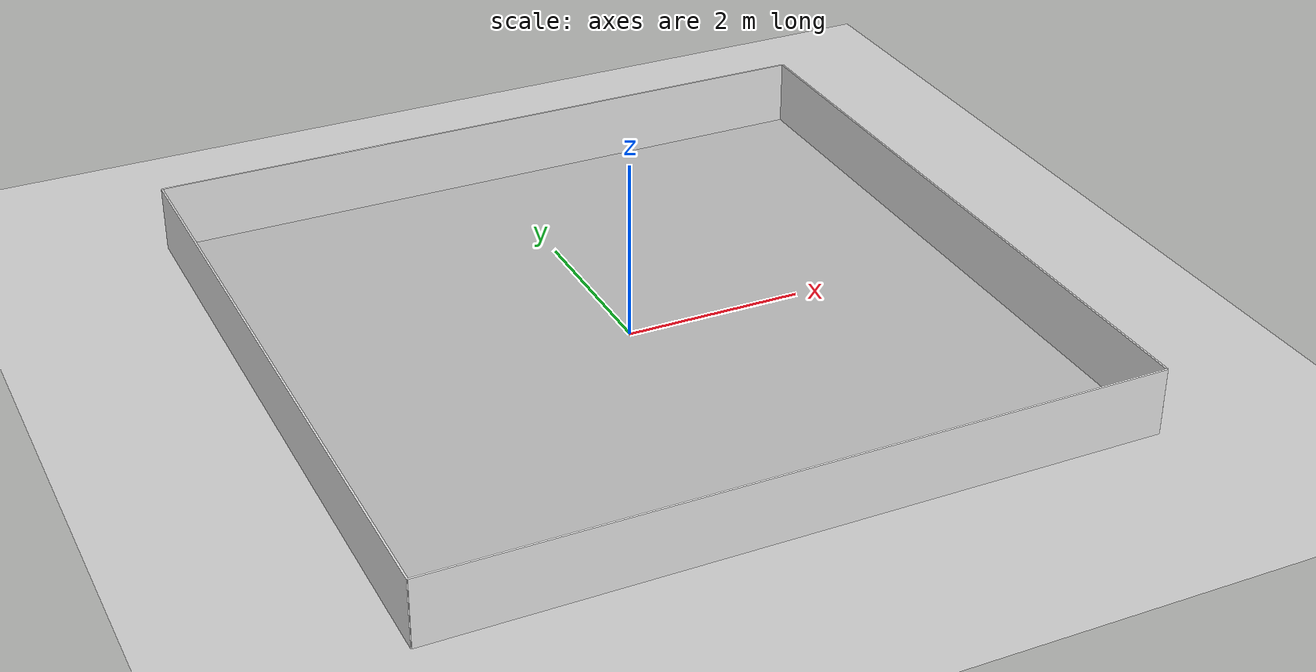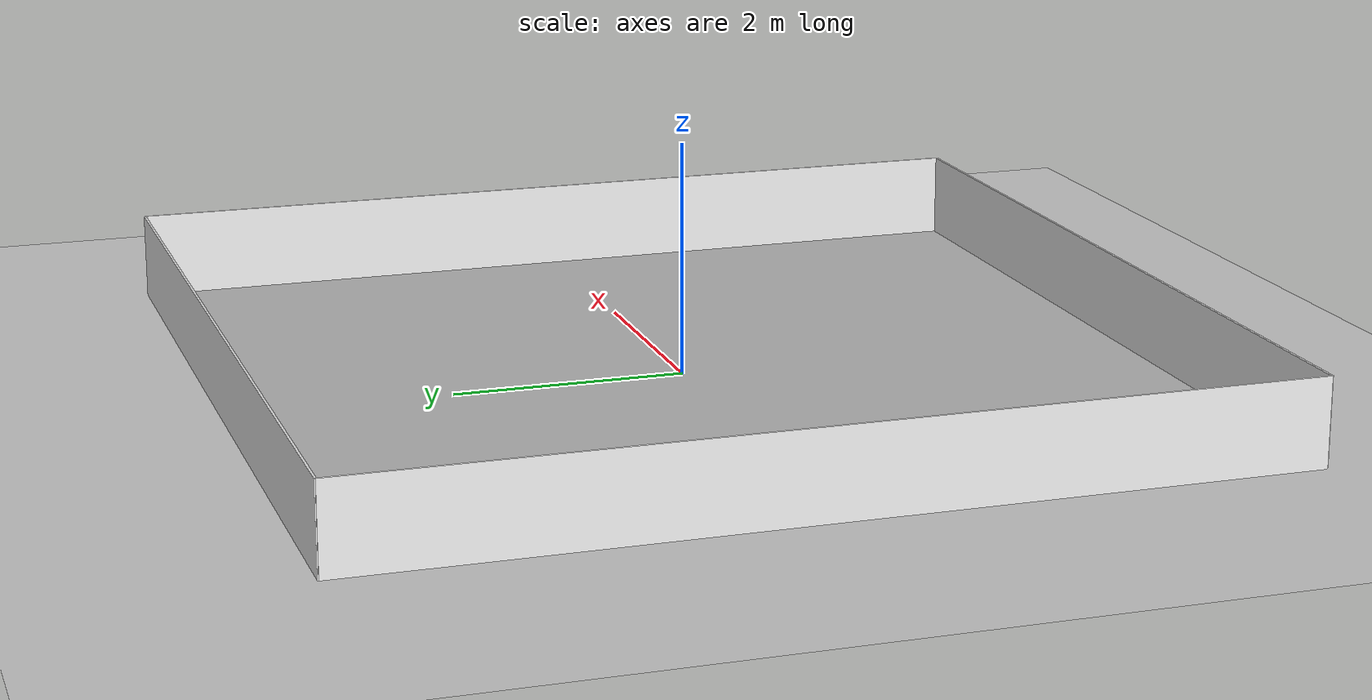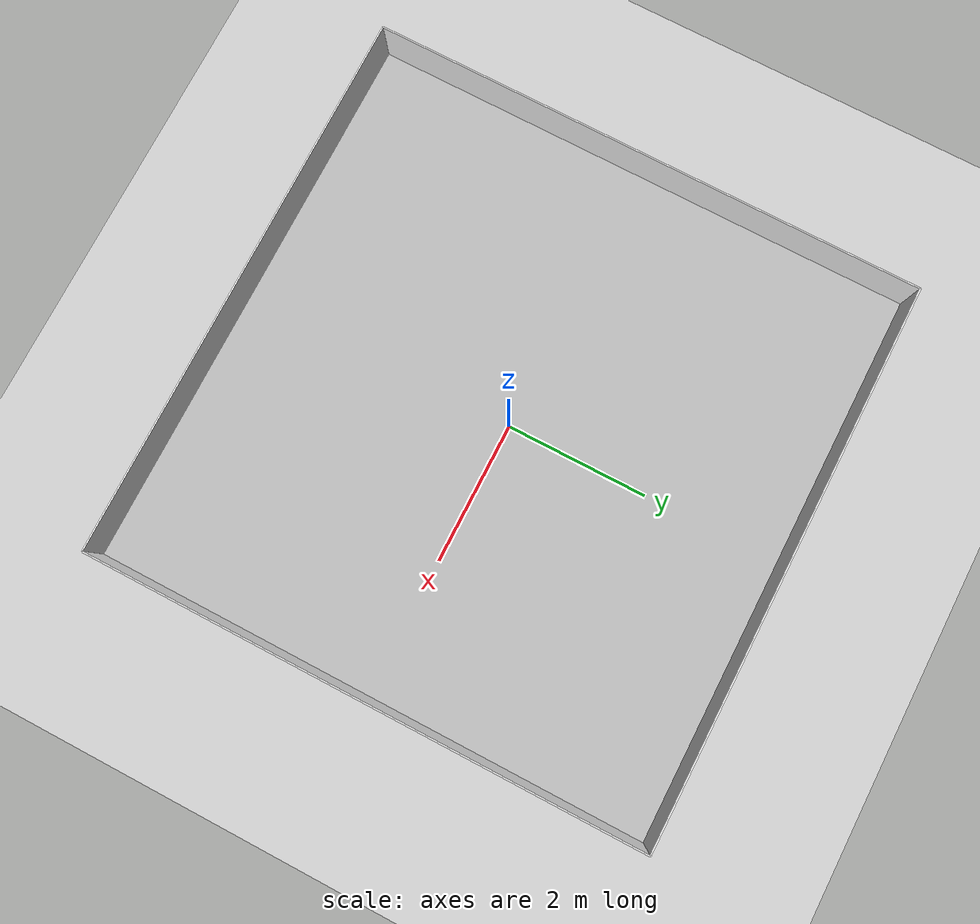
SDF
<?xml version="1.0" ?>
<sdf version="1.5">
  <world name="limo_sandtable_world">
    <!-- A global light source -->
    <include>
      <uri>model://sun</uri>
    </include>
    <!-- A ground plane -->
    <include>
      <uri>model://ground_plane</uri>
    </include>

    <!-- Physics settings -->
    <physics type='ode'>
      <max_step_size>0.001</max_step_size>
      <real_time_factor>1</real_time_factor>
      <real_time_update_rate>1000</real_time_update_rate>
      <gravity>0 0 -9.8</gravity>
    </physics>

    <!-- Sandtable Textured Ground (Visual Only, scaled 2.5x to 7.875m) -->
    <model name='sandtable_ground'>
      <static>true</static>
      <link name='link'>
        <pose>0 0 0.0005 0 0 0</pose>
        <visual name='visual'>
          <geometry>
            <box>
              <size>7.875 7.875 0.001</size>
            </box>
          </geometry>
          <material>
            <script>
              <uri>file:///home/zf/catkin_ws/src/limo_gazebo_sim/materials/scripts</uri>
              <uri>file:///home/zf/catkin_ws/src/limo_gazebo_sim/materials/textures</uri>
              <name>LimoMap</name>
            </script>
          </material>
        </visual>
      </link>
    </model>

    <!-- White Enclosure Walls (With Collision, scaled 2.5x) -->
    <model name='enclosure_walls'>
      <static>true</static>
      <!-- North Wall -->
      <link name='wall_north'>
        <pose>3.9375 0 0.375 0 0 0</pose>
        <collision name='collision'>
          <geometry>
            <box>
              <size>0.02 7.875 0.75</size>
            </box>
          </geometry>
        </collision>
        <visual name='visual'>
          <geometry>
            <box>
              <size>0.02 7.875 0.75</size>
            </box>
          </geometry>
          <material>
            <script>
              <name>Gazebo/White</name>
              <uri>file://media/materials/scripts/gazebo.material</uri>
            </script>
          </material>
        </visual>
      </link>
      <!-- South Wall -->
      <link name='wall_south'>
        <pose>-3.9375 0 0.375 0 0 0</pose>
        <collision name='collision'>
          <geometry>
            <box>
              <size>0.02 7.875 0.75</size>
            </box>
          </geometry>
        </collision>
        <visual name='visual'>
          <geometry>
            <box>
              <size>0.02 7.875 0.75</size>
            </box>
          </geometry>
          <material>
            <script>
              <name>Gazebo/White</name>
              <uri>file://media/materials/scripts/gazebo.material</uri>
            </script>
          </material>
        </visual>
      </link>
      <!-- East Wall -->
      <link name='wall_east'>
        <pose>0 3.9375 0.375 0 0 0</pose>
        <collision name='collision'>
          <geometry>
            <box>
              <size>7.875 0.02 0.75</size>
            </box>
          </geometry>
        </collision>
        <visual name='visual'>
          <geometry>
            <box>
              <size>7.875 0.02 0.75</size>
            </box>
          </geometry>
          <material>
            <script>
              <name>Gazebo/White</name>
              <uri>file://media/materials/scripts/gazebo.material</uri>
            </script>
          </material>
        </visual>
      </link>
      <!-- West Wall -->
      <link name='wall_west'>
        <pose>0 -3.9375 0.375 0 0 0</pose>
        <collision name='collision'>
          <geometry>
            <box>
              <size>7.875 0.02 0.75</size>
            </box>
          </geometry>
        </collision>
        <visual name='visual'>
          <geometry>
            <box>
              <size>7.875 0.02 0.75</size>
            </box>
          </geometry>
          <material>
            <script>
              <name>Gazebo/White</name>
              <uri>file://media/materials/scripts/gazebo.material</uri>
            </script>
          </material>
        </visual>
      </link>
    </model>
  </world>
</sdf>
